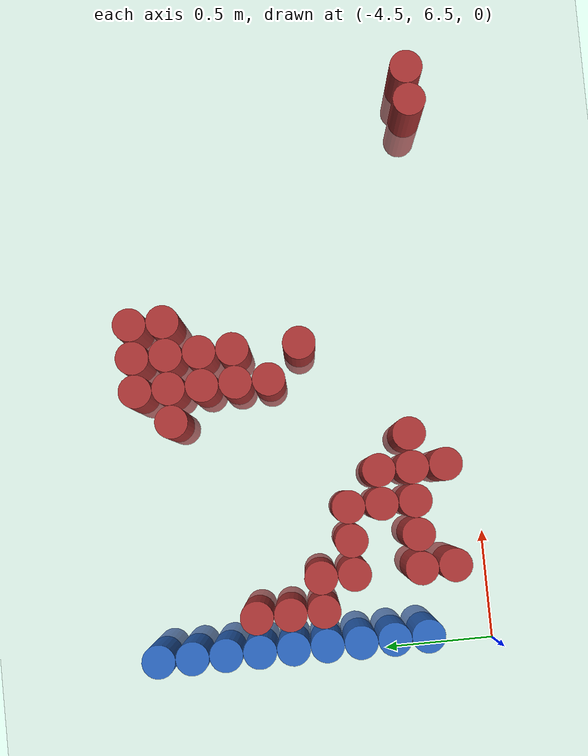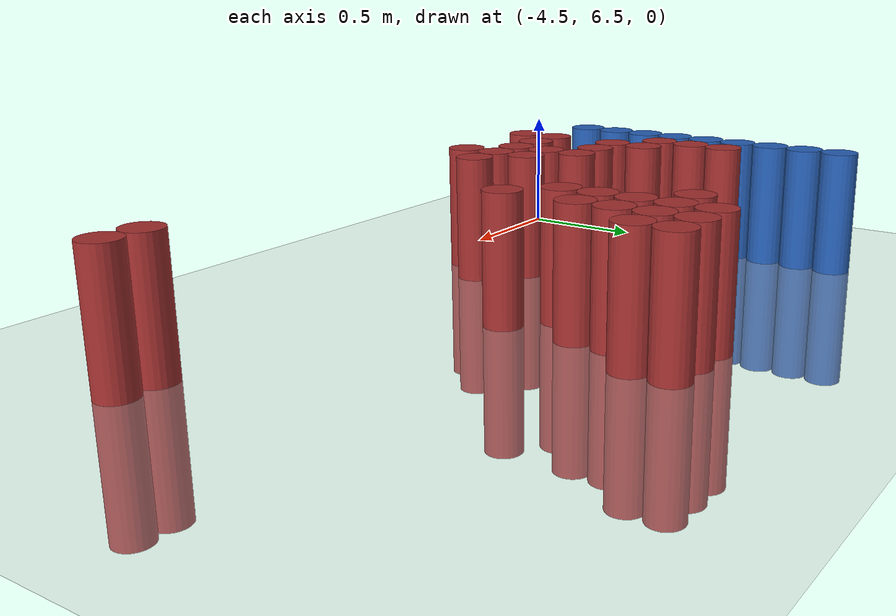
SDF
<sdf version="1.6">
 <world name="default">
  <model name="ground_plane">
   <static>1</static>
   <link name="link">
    <collision name="collision">
     <geometry><plane><normal>0 0 1</normal><size>100 100</size></plane></geometry>
     <surface><friction><ode><mu>100</mu><mu2>50</mu2></ode></friction></surface>
    </collision>
    <visual name="visual">
     <cast_shadows>0</cast_shadows>
     <geometry><plane><normal>0 0 1</normal><size>100 100</size></plane></geometry>
     <material>
      <script><uri>file://media/materials/scripts/gazebo.material</uri><name>Gazebo/Grey</name></script>
     </material>
    </visual>
   </link>
  </model>
  <model name="unit_cylinder_107">
   <static>1</static>
   <pose>-4.425000 6.825000 0.000000 0.000000 0.000000 0.000000</pose>
   <link name="link">
    <inertial>
     <mass>1</mass>
     <inertia><ixx>0.145833</ixx><ixy>0</ixy><ixz>0</ixz><iyy>0.145833</iyy><iyz>0</iyz><izz>0.125</izz></inertia>
    </inertial>
    <collision name="collision">
     <geometry><cylinder><radius>0.075000</radius><length>1</length></cylinder></geometry>
    </collision>
    <visual name="visual">
     <geometry><cylinder><radius>0.075000</radius><length>1</length></cylinder></geometry>
     <material>
      <ambient>0.152000 0.379000 0.720000 1</ambient>
      <diffuse>0.152000 0.379000 0.720000 1</diffuse>
     </material>
     <material>
      <script><name>Gazebo/Grey</name><uri>file://media/materials/scripts/gazebo.material</uri></script>
     </material>
    </visual>
    <sensor name="sensor_contact" type="contact"><contact><collision>collision</collision></contact></sensor>
   </link>
   <plugin filename="gz-sim-touchplugin-system" name="gz::sim::systems::TouchPlugin">
    <target>robot</target>
    <namespace>robot</namespace>
    <time>0.001</time>
    <enabled>true</enabled>
   </plugin>
  </model>
  <model name="unit_cylinder_108">
   <static>1</static>
   <pose>-4.425000 6.975000 0.000000 0.000000 0.000000 0.000000</pose>
   <link name="link">
    <inertial>
     <mass>1</mass>
     <inertia><ixx>0.145833</ixx><ixy>0</ixy><ixz>0</ixz><iyy>0.145833</iyy><iyz>0</iyz><izz>0.125</izz></inertia>
    </inertial>
    <collision name="collision">
     <geometry><cylinder><radius>0.075000</radius><length>1</length></cylinder></geometry>
    </collision>
    <visual name="visual">
     <geometry><cylinder><radius>0.075000</radius><length>1</length></cylinder></geometry>
     <material>
      <ambient>0.152000 0.379000 0.720000 1</ambient>
      <diffuse>0.152000 0.379000 0.720000 1</diffuse>
     </material>
     <material>
      <script><name>Gazebo/Grey</name><uri>file://media/materials/scripts/gazebo.material</uri></script>
     </material>
    </visual>
    <sensor name="sensor_contact" type="contact"><contact><collision>collision</collision></contact></sensor>
   </link>
   <plugin filename="gz-sim-touchplugin-system" name="gz::sim::systems::TouchPlugin">
    <target>robot</target>
    <namespace>robot</namespace>
    <time>0.001</time>
    <enabled>true</enabled>
   </plugin>
  </model>
  <model name="unit_cylinder_109">
   <static>1</static>
   <pose>-4.425000 7.125000 0.000000 0.000000 0.000000 0.000000</pose>
   <link name="link">
    <inertial>
     <mass>1</mass>
     <inertia><ixx>0.145833</ixx><ixy>0</ixy><ixz>0</ixz><iyy>0.145833</iyy><iyz>0</iyz><izz>0.125</izz></inertia>
    </inertial>
    <collision name="collision">
     <geometry><cylinder><radius>0.075000</radius><length>1</length></cylinder></geometry>
    </collision>
    <visual name="visual">
     <geometry><cylinder><radius>0.075000</radius><length>1</length></cylinder></geometry>
     <material>
      <ambient>0.152000 0.379000 0.720000 1</ambient>
      <diffuse>0.152000 0.379000 0.720000 1</diffuse>
     </material>
     <material>
      <script><name>Gazebo/Grey</name><uri>file://media/materials/scripts/gazebo.material</uri></script>
     </material>
    </visual>
    <sensor name="sensor_contact" type="contact"><contact><collision>collision</collision></contact></sensor>
   </link>
   <plugin filename="gz-sim-touchplugin-system" name="gz::sim::systems::TouchPlugin">
    <target>robot</target>
    <namespace>robot</namespace>
    <time>0.001</time>
    <enabled>true</enabled>
   </plugin>
  </model>
  <model name="unit_cylinder_110">
   <static>1</static>
   <pose>-4.425000 7.275000 0.000000 0.000000 0.000000 0.000000</pose>
   <link name="link">
    <inertial>
     <mass>1</mass>
     <inertia><ixx>0.145833</ixx><ixy>0</ixy><ixz>0</ixz><iyy>0.145833</iyy><iyz>0</iyz><izz>0.125</izz></inertia>
    </inertial>
    <collision name="collision">
     <geometry><cylinder><radius>0.075000</radius><length>1</length></cylinder></geometry>
    </collision>
    <visual name="visual">
     <geometry><cylinder><radius>0.075000</radius><length>1</length></cylinder></geometry>
     <material>
      <ambient>0.152000 0.379000 0.720000 1</ambient>
      <diffuse>0.152000 0.379000 0.720000 1</diffuse>
     </material>
     <material>
      <script><name>Gazebo/Grey</name><uri>file://media/materials/scripts/gazebo.material</uri></script>
     </material>
    </visual>
    <sensor name="sensor_contact" type="contact"><contact><collision>collision</collision></contact></sensor>
   </link>
   <plugin filename="gz-sim-touchplugin-system" name="gz::sim::systems::TouchPlugin">
    <target>robot</target>
    <namespace>robot</namespace>
    <time>0.001</time>
    <enabled>true</enabled>
   </plugin>
  </model>
  <model name="unit_cylinder_111">
   <static>1</static>
   <pose>-4.425000 7.425000 0.000000 0.000000 0.000000 0.000000</pose>
   <link name="link">
    <inertial>
     <mass>1</mass>
     <inertia><ixx>0.145833</ixx><ixy>0</ixy><ixz>0</ixz><iyy>0.145833</iyy><iyz>0</iyz><izz>0.125</izz></inertia>
    </inertial>
    <collision name="collision">
     <geometry><cylinder><radius>0.075000</radius><length>1</length></cylinder></geometry>
    </collision>
    <visual name="visual">
     <geometry><cylinder><radius>0.075000</radius><length>1</length></cylinder></geometry>
     <material>
      <ambient>0.152000 0.379000 0.720000 1</ambient>
      <diffuse>0.152000 0.379000 0.720000 1</diffuse>
     </material>
     <material>
      <script><name>Gazebo/Grey</name><uri>file://media/materials/scripts/gazebo.material</uri></script>
     </material>
    </visual>
    <sensor name="sensor_contact" type="contact"><contact><collision>collision</collision></contact></sensor>
   </link>
   <plugin filename="gz-sim-touchplugin-system" name="gz::sim::systems::TouchPlugin">
    <target>robot</target>
    <namespace>robot</namespace>
    <time>0.001</time>
    <enabled>true</enabled>
   </plugin>
  </model>
  <model name="unit_cylinder_112">
   <static>1</static>
   <pose>-4.425000 7.575000 0.000000 0.000000 0.000000 0.000000</pose>
   <link name="link">
    <inertial>
     <mass>1</mass>
     <inertia><ixx>0.145833</ixx><ixy>0</ixy><ixz>0</ixz><iyy>0.145833</iyy><iyz>0</iyz><izz>0.125</izz></inertia>
    </inertial>
    <collision name="collision">
     <geometry><cylinder><radius>0.075000</radius><length>1</length></cylinder></geometry>
    </collision>
    <visual name="visual">
     <geometry><cylinder><radius>0.075000</radius><length>1</length></cylinder></geometry>
     <material>
      <ambient>0.152000 0.379000 0.720000 1</ambient>
      <diffuse>0.152000 0.379000 0.720000 1</diffuse>
     </material>
     <material>
      <script><name>Gazebo/Grey</name><uri>file://media/materials/scripts/gazebo.material</uri></script>
     </material>
    </visual>
    <sensor name="sensor_contact" type="contact"><contact><collision>collision</collision></contact></sensor>
   </link>
   <plugin filename="gz-sim-touchplugin-system" name="gz::sim::systems::TouchPlugin">
    <target>robot</target>
    <namespace>robot</namespace>
    <time>0.001</time>
    <enabled>true</enabled>
   </plugin>
  </model>
  <model name="unit_cylinder_113">
   <static>1</static>
   <pose>-4.425000 7.725000 0.000000 0.000000 0.000000 0.000000</pose>
   <link name="link">
    <inertial>
     <mass>1</mass>
     <inertia><ixx>0.145833</ixx><ixy>0</ixy><ixz>0</ixz><iyy>0.145833</iyy><iyz>0</iyz><izz>0.125</izz></inertia>
    </inertial>
    <collision name="collision">
     <geometry><cylinder><radius>0.075000</radius><length>1</length></cylinder></geometry>
    </collision>
    <visual name="visual">
     <geometry><cylinder><radius>0.075000</radius><length>1</length></cylinder></geometry>
     <material>
      <ambient>0.152000 0.379000 0.720000 1</ambient>
      <diffuse>0.152000 0.379000 0.720000 1</diffuse>
     </material>
     <material>
      <script><name>Gazebo/Grey</name><uri>file://media/materials/scripts/gazebo.material</uri></script>
     </material>
    </visual>
    <sensor name="sensor_contact" type="contact"><contact><collision>collision</collision></contact></sensor>
   </link>
   <plugin filename="gz-sim-touchplugin-system" name="gz::sim::systems::TouchPlugin">
    <target>robot</target>
    <namespace>robot</namespace>
    <time>0.001</time>
    <enabled>true</enabled>
   </plugin>
  </model>
  <model name="unit_cylinder_114">
   <static>1</static>
   <pose>-4.425000 7.875000 0.000000 0.000000 0.000000 0.000000</pose>
   <link name="link">
    <inertial>
     <mass>1</mass>
     <inertia><ixx>0.145833</ixx><ixy>0</ixy><ixz>0</ixz><iyy>0.145833</iyy><iyz>0</iyz><izz>0.125</izz></inertia>
    </inertial>
    <collision name="collision">
     <geometry><cylinder><radius>0.075000</radius><length>1</length></cylinder></geometry>
    </collision>
    <visual name="visual">
     <geometry><cylinder><radius>0.075000</radius><length>1</length></cylinder></geometry>
     <material>
      <ambient>0.152000 0.379000 0.720000 1</ambient>
      <diffuse>0.152000 0.379000 0.720000 1</diffuse>
     </material>
     <material>
      <script><name>Gazebo/Grey</name><uri>file://media/materials/scripts/gazebo.material</uri></script>
     </material>
    </visual>
    <sensor name="sensor_contact" type="contact"><contact><collision>collision</collision></contact></sensor>
   </link>
   <plugin filename="gz-sim-touchplugin-system" name="gz::sim::systems::TouchPlugin">
    <target>robot</target>
    <namespace>robot</namespace>
    <time>0.001</time>
    <enabled>true</enabled>
   </plugin>
  </model>
  <model name="unit_cylinder_115">
   <static>1</static>
   <pose>-4.425000 8.025000 0.000000 0.000000 0.000000 0.000000</pose>
   <link name="link">
    <inertial>
     <mass>1</mass>
     <inertia><ixx>0.145833</ixx><ixy>0</ixy><ixz>0</ixz><iyy>0.145833</iyy><iyz>0</iyz><izz>0.125</izz></inertia>
    </inertial>
    <collision name="collision">
     <geometry><cylinder><radius>0.075000</radius><length>1</length></cylinder></geometry>
    </collision>
    <visual name="visual">
     <geometry><cylinder><radius>0.075000</radius><length>1</length></cylinder></geometry>
     <material>
      <ambient>0.152000 0.379000 0.720000 1</ambient>
      <diffuse>0.152000 0.379000 0.720000 1</diffuse>
     </material>
     <material>
      <script><name>Gazebo/Grey</name><uri>file://media/materials/scripts/gazebo.material</uri></script>
     </material>
    </visual>
    <sensor name="sensor_contact" type="contact"><contact><collision>collision</collision></contact></sensor>
   </link>
   <plugin filename="gz-sim-touchplugin-system" name="gz::sim::systems::TouchPlugin">
    <target>robot</target>
    <namespace>robot</namespace>
    <time>0.001</time>
    <enabled>true</enabled>
   </plugin>
  </model>
  <model name="unit_cylinder_132">
   <static>1</static>
   <pose>-4.275000 7.275000 0.000000 0.000000 0.000000 0.000000</pose>
   <link name="link">
    <inertial>
     <mass>1</mass>
     <inertia><ixx>0.145833</ixx><ixy>0</ixy><ixz>0</ixz><iyy>0.145833</iyy><iyz>0</iyz><izz>0.125</izz></inertia>
    </inertial>
    <collision name="collision">
     <geometry><cylinder><radius>0.075000</radius><length>1</length></cylinder></geometry>
    </collision>
    <visual name="visual">
     <geometry><cylinder><radius>0.075000</radius><length>1</length></cylinder></geometry>
     <material>
      <ambient>0.648000 0.192000 0.192000 1</ambient>
      <diffuse>0.648000 0.192000 0.192000 1</diffuse>
     </material>
     <material>
      <script><name>Gazebo/Grey</name><uri>file://media/materials/scripts/gazebo.material</uri></script>
     </material>
    </visual>
    <sensor name="sensor_contact" type="contact"><contact><collision>collision</collision></contact></sensor>
   </link>
   <plugin filename="gz-sim-touchplugin-system" name="gz::sim::systems::TouchPlugin">
    <target>robot</target>
    <namespace>robot</namespace>
    <time>0.001</time>
    <enabled>true</enabled>
   </plugin>
  </model>
  <model name="unit_cylinder_133">
   <static>1</static>
   <pose>-4.275000 7.425000 0.000000 0.000000 0.000000 0.000000</pose>
   <link name="link">
    <inertial>
     <mass>1</mass>
     <inertia><ixx>0.145833</ixx><ixy>0</ixy><ixz>0</ixz><iyy>0.145833</iyy><iyz>0</iyz><izz>0.125</izz></inertia>
    </inertial>
    <collision name="collision">
     <geometry><cylinder><radius>0.075000</radius><length>1</length></cylinder></geometry>
    </collision>
    <visual name="visual">
     <geometry><cylinder><radius>0.075000</radius><length>1</length></cylinder></geometry>
     <material>
      <ambient>0.648000 0.192000 0.192000 1</ambient>
      <diffuse>0.648000 0.192000 0.192000 1</diffuse>
     </material>
     <material>
      <script><name>Gazebo/Grey</name><uri>file://media/materials/scripts/gazebo.material</uri></script>
     </material>
    </visual>
    <sensor name="sensor_contact" type="contact"><contact><collision>collision</collision></contact></sensor>
   </link>
   <plugin filename="gz-sim-touchplugin-system" name="gz::sim::systems::TouchPlugin">
    <target>robot</target>
    <namespace>robot</namespace>
    <time>0.001</time>
    <enabled>true</enabled>
   </plugin>
  </model>
  <model name="unit_cylinder_134">
   <static>1</static>
   <pose>-4.275000 7.575000 0.000000 0.000000 0.000000 0.000000</pose>
   <link name="link">
    <inertial>
     <mass>1</mass>
     <inertia><ixx>0.145833</ixx><ixy>0</ixy><ixz>0</ixz><iyy>0.145833</iyy><iyz>0</iyz><izz>0.125</izz></inertia>
    </inertial>
    <collision name="collision">
     <geometry><cylinder><radius>0.075000</radius><length>1</length></cylinder></geometry>
    </collision>
    <visual name="visual">
     <geometry><cylinder><radius>0.075000</radius><length>1</length></cylinder></geometry>
     <material>
      <ambient>0.648000 0.192000 0.192000 1</ambient>
      <diffuse>0.648000 0.192000 0.192000 1</diffuse>
     </material>
     <material>
      <script><name>Gazebo/Grey</name><uri>file://media/materials/scripts/gazebo.material</uri></script>
     </material>
    </visual>
    <sensor name="sensor_contact" type="contact"><contact><collision>collision</collision></contact></sensor>
   </link>
   <plugin filename="gz-sim-touchplugin-system" name="gz::sim::systems::TouchPlugin">
    <target>robot</target>
    <namespace>robot</namespace>
    <time>0.001</time>
    <enabled>true</enabled>
   </plugin>
  </model>
  <model name="unit_cylinder_142">
   <static>1</static>
   <pose>-4.125000 6.675000 0.000000 0.000000 0.000000 0.000000</pose>
   <link name="link">
    <inertial>
     <mass>1</mass>
     <inertia><ixx>0.145833</ixx><ixy>0</ixy><ixz>0</ixz><iyy>0.145833</iyy><iyz>0</iyz><izz>0.125</izz></inertia>
    </inertial>
    <collision name="collision">
     <geometry><cylinder><radius>0.075000</radius><length>1</length></cylinder></geometry>
    </collision>
    <visual name="visual">
     <geometry><cylinder><radius>0.075000</radius><length>1</length></cylinder></geometry>
     <material>
      <ambient>0.648000 0.192000 0.192000 1</ambient>
      <diffuse>0.648000 0.192000 0.192000 1</diffuse>
     </material>
     <material>
      <script><name>Gazebo/Grey</name><uri>file://media/materials/scripts/gazebo.material</uri></script>
     </material>
    </visual>
    <sensor name="sensor_contact" type="contact"><contact><collision>collision</collision></contact></sensor>
   </link>
   <plugin filename="gz-sim-touchplugin-system" name="gz::sim::systems::TouchPlugin">
    <target>robot</target>
    <namespace>robot</namespace>
    <time>0.001</time>
    <enabled>true</enabled>
   </plugin>
  </model>
  <model name="unit_cylinder_143">
   <static>1</static>
   <pose>-4.125000 6.825000 0.000000 0.000000 0.000000 0.000000</pose>
   <link name="link">
    <inertial>
     <mass>1</mass>
     <inertia><ixx>0.145833</ixx><ixy>0</ixy><ixz>0</ixz><iyy>0.145833</iyy><iyz>0</iyz><izz>0.125</izz></inertia>
    </inertial>
    <collision name="collision">
     <geometry><cylinder><radius>0.075000</radius><length>1</length></cylinder></geometry>
    </collision>
    <visual name="visual">
     <geometry><cylinder><radius>0.075000</radius><length>1</length></cylinder></geometry>
     <material>
      <ambient>0.648000 0.192000 0.192000 1</ambient>
      <diffuse>0.648000 0.192000 0.192000 1</diffuse>
     </material>
     <material>
      <script><name>Gazebo/Grey</name><uri>file://media/materials/scripts/gazebo.material</uri></script>
     </material>
    </visual>
    <sensor name="sensor_contact" type="contact"><contact><collision>collision</collision></contact></sensor>
   </link>
   <plugin filename="gz-sim-touchplugin-system" name="gz::sim::systems::TouchPlugin">
    <target>robot</target>
    <namespace>robot</namespace>
    <time>0.001</time>
    <enabled>true</enabled>
   </plugin>
  </model>
  <model name="unit_cylinder_144">
   <static>1</static>
   <pose>-4.125000 7.125000 0.000000 0.000000 0.000000 0.000000</pose>
   <link name="link">
    <inertial>
     <mass>1</mass>
     <inertia><ixx>0.145833</ixx><ixy>0</ixy><ixz>0</ixz><iyy>0.145833</iyy><iyz>0</iyz><izz>0.125</izz></inertia>
    </inertial>
    <collision name="collision">
     <geometry><cylinder><radius>0.075000</radius><length>1</length></cylinder></geometry>
    </collision>
    <visual name="visual">
     <geometry><cylinder><radius>0.075000</radius><length>1</length></cylinder></geometry>
     <material>
      <ambient>0.648000 0.192000 0.192000 1</ambient>
      <diffuse>0.648000 0.192000 0.192000 1</diffuse>
     </material>
     <material>
      <script><name>Gazebo/Grey</name><uri>file://media/materials/scripts/gazebo.material</uri></script>
     </material>
    </visual>
    <sensor name="sensor_contact" type="contact"><contact><collision>collision</collision></contact></sensor>
   </link>
   <plugin filename="gz-sim-touchplugin-system" name="gz::sim::systems::TouchPlugin">
    <target>robot</target>
    <namespace>robot</namespace>
    <time>0.001</time>
    <enabled>true</enabled>
   </plugin>
  </model>
  <model name="unit_cylinder_145">
   <static>1</static>
   <pose>-4.125000 7.275000 0.000000 0.000000 0.000000 0.000000</pose>
   <link name="link">
    <inertial>
     <mass>1</mass>
     <inertia><ixx>0.145833</ixx><ixy>0</ixy><ixz>0</ixz><iyy>0.145833</iyy><iyz>0</iyz><izz>0.125</izz></inertia>
    </inertial>
    <collision name="collision">
     <geometry><cylinder><radius>0.075000</radius><length>1</length></cylinder></geometry>
    </collision>
    <visual name="visual">
     <geometry><cylinder><radius>0.075000</radius><length>1</length></cylinder></geometry>
     <material>
      <ambient>0.648000 0.192000 0.192000 1</ambient>
      <diffuse>0.648000 0.192000 0.192000 1</diffuse>
     </material>
     <material>
      <script><name>Gazebo/Grey</name><uri>file://media/materials/scripts/gazebo.material</uri></script>
     </material>
    </visual>
    <sensor name="sensor_contact" type="contact"><contact><collision>collision</collision></contact></sensor>
   </link>
   <plugin filename="gz-sim-touchplugin-system" name="gz::sim::systems::TouchPlugin">
    <target>robot</target>
    <namespace>robot</namespace>
    <time>0.001</time>
    <enabled>true</enabled>
   </plugin>
  </model>
  <model name="unit_cylinder_153">
   <static>1</static>
   <pose>-3.975000 6.825000 0.000000 0.000000 0.000000 0.000000</pose>
   <link name="link">
    <inertial>
     <mass>1</mass>
     <inertia><ixx>0.145833</ixx><ixy>0</ixy><ixz>0</ixz><iyy>0.145833</iyy><iyz>0</iyz><izz>0.125</izz></inertia>
    </inertial>
    <collision name="collision">
     <geometry><cylinder><radius>0.075000</radius><length>1</length></cylinder></geometry>
    </collision>
    <visual name="visual">
     <geometry><cylinder><radius>0.075000</radius><length>1</length></cylinder></geometry>
     <material>
      <ambient>0.648000 0.192000 0.192000 1</ambient>
      <diffuse>0.648000 0.192000 0.192000 1</diffuse>
     </material>
     <material>
      <script><name>Gazebo/Grey</name><uri>file://media/materials/scripts/gazebo.material</uri></script>
     </material>
    </visual>
    <sensor name="sensor_contact" type="contact"><contact><collision>collision</collision></contact></sensor>
   </link>
   <plugin filename="gz-sim-touchplugin-system" name="gz::sim::systems::TouchPlugin">
    <target>robot</target>
    <namespace>robot</namespace>
    <time>0.001</time>
    <enabled>true</enabled>
   </plugin>
  </model>
  <model name="unit_cylinder_154">
   <static>1</static>
   <pose>-3.975000 7.125000 0.000000 0.000000 0.000000 0.000000</pose>
   <link name="link">
    <inertial>
     <mass>1</mass>
     <inertia><ixx>0.145833</ixx><ixy>0</ixy><ixz>0</ixz><iyy>0.145833</iyy><iyz>0</iyz><izz>0.125</izz></inertia>
    </inertial>
    <collision name="collision">
     <geometry><cylinder><radius>0.075000</radius><length>1</length></cylinder></geometry>
    </collision>
    <visual name="visual">
     <geometry><cylinder><radius>0.075000</radius><length>1</length></cylinder></geometry>
     <material>
      <ambient>0.648000 0.192000 0.192000 1</ambient>
      <diffuse>0.648000 0.192000 0.192000 1</diffuse>
     </material>
     <material>
      <script><name>Gazebo/Grey</name><uri>file://media/materials/scripts/gazebo.material</uri></script>
     </material>
    </visual>
    <sensor name="sensor_contact" type="contact"><contact><collision>collision</collision></contact></sensor>
   </link>
   <plugin filename="gz-sim-touchplugin-system" name="gz::sim::systems::TouchPlugin">
    <target>robot</target>
    <namespace>robot</namespace>
    <time>0.001</time>
    <enabled>true</enabled>
   </plugin>
  </model>
  <model name="unit_cylinder_158">
   <static>1</static>
   <pose>-3.825000 6.825000 0.000000 0.000000 0.000000 0.000000</pose>
   <link name="link">
    <inertial>
     <mass>1</mass>
     <inertia><ixx>0.145833</ixx><ixy>0</ixy><ixz>0</ixz><iyy>0.145833</iyy><iyz>0</iyz><izz>0.125</izz></inertia>
    </inertial>
    <collision name="collision">
     <geometry><cylinder><radius>0.075000</radius><length>1</length></cylinder></geometry>
    </collision>
    <visual name="visual">
     <geometry><cylinder><radius>0.075000</radius><length>1</length></cylinder></geometry>
     <material>
      <ambient>0.648000 0.192000 0.192000 1</ambient>
      <diffuse>0.648000 0.192000 0.192000 1</diffuse>
     </material>
     <material>
      <script><name>Gazebo/Grey</name><uri>file://media/materials/scripts/gazebo.material</uri></script>
     </material>
    </visual>
    <sensor name="sensor_contact" type="contact"><contact><collision>collision</collision></contact></sensor>
   </link>
   <plugin filename="gz-sim-touchplugin-system" name="gz::sim::systems::TouchPlugin">
    <target>robot</target>
    <namespace>robot</namespace>
    <time>0.001</time>
    <enabled>true</enabled>
   </plugin>
  </model>
  <model name="unit_cylinder_159">
   <static>1</static>
   <pose>-3.825000 6.975000 0.000000 0.000000 0.000000 0.000000</pose>
   <link name="link">
    <inertial>
     <mass>1</mass>
     <inertia><ixx>0.145833</ixx><ixy>0</ixy><ixz>0</ixz><iyy>0.145833</iyy><iyz>0</iyz><izz>0.125</izz></inertia>
    </inertial>
    <collision name="collision">
     <geometry><cylinder><radius>0.075000</radius><length>1</length></cylinder></geometry>
    </collision>
    <visual name="visual">
     <geometry><cylinder><radius>0.075000</radius><length>1</length></cylinder></geometry>
     <material>
      <ambient>0.648000 0.192000 0.192000 1</ambient>
      <diffuse>0.648000 0.192000 0.192000 1</diffuse>
     </material>
     <material>
      <script><name>Gazebo/Grey</name><uri>file://media/materials/scripts/gazebo.material</uri></script>
     </material>
    </visual>
    <sensor name="sensor_contact" type="contact"><contact><collision>collision</collision></contact></sensor>
   </link>
   <plugin filename="gz-sim-touchplugin-system" name="gz::sim::systems::TouchPlugin">
    <target>robot</target>
    <namespace>robot</namespace>
    <time>0.001</time>
    <enabled>true</enabled>
   </plugin>
  </model>
  <model name="unit_cylinder_160">
   <static>1</static>
   <pose>-3.825000 7.125000 0.000000 0.000000 0.000000 0.000000</pose>
   <link name="link">
    <inertial>
     <mass>1</mass>
     <inertia><ixx>0.145833</ixx><ixy>0</ixy><ixz>0</ixz><iyy>0.145833</iyy><iyz>0</iyz><izz>0.125</izz></inertia>
    </inertial>
    <collision name="collision">
     <geometry><cylinder><radius>0.075000</radius><length>1</length></cylinder></geometry>
    </collision>
    <visual name="visual">
     <geometry><cylinder><radius>0.075000</radius><length>1</length></cylinder></geometry>
     <material>
      <ambient>0.648000 0.192000 0.192000 1</ambient>
      <diffuse>0.648000 0.192000 0.192000 1</diffuse>
     </material>
     <material>
      <script><name>Gazebo/Grey</name><uri>file://media/materials/scripts/gazebo.material</uri></script>
     </material>
    </visual>
    <sensor name="sensor_contact" type="contact"><contact><collision>collision</collision></contact></sensor>
   </link>
   <plugin filename="gz-sim-touchplugin-system" name="gz::sim::systems::TouchPlugin">
    <target>robot</target>
    <namespace>robot</namespace>
    <time>0.001</time>
    <enabled>true</enabled>
   </plugin>
  </model>
  <model name="unit_cylinder_162">
   <static>1</static>
   <pose>-3.675000 6.675000 0.000000 0.000000 0.000000 0.000000</pose>
   <link name="link">
    <inertial>
     <mass>1</mass>
     <inertia><ixx>0.145833</ixx><ixy>0</ixy><ixz>0</ixz><iyy>0.145833</iyy><iyz>0</iyz><izz>0.125</izz></inertia>
    </inertial>
    <collision name="collision">
     <geometry><cylinder><radius>0.075000</radius><length>1</length></cylinder></geometry>
    </collision>
    <visual name="visual">
     <geometry><cylinder><radius>0.075000</radius><length>1</length></cylinder></geometry>
     <material>
      <ambient>0.648000 0.192000 0.192000 1</ambient>
      <diffuse>0.648000 0.192000 0.192000 1</diffuse>
     </material>
     <material>
      <script><name>Gazebo/Grey</name><uri>file://media/materials/scripts/gazebo.material</uri></script>
     </material>
    </visual>
    <sensor name="sensor_contact" type="contact"><contact><collision>collision</collision></contact></sensor>
   </link>
   <plugin filename="gz-sim-touchplugin-system" name="gz::sim::systems::TouchPlugin">
    <target>robot</target>
    <namespace>robot</namespace>
    <time>0.001</time>
    <enabled>true</enabled>
   </plugin>
  </model>
  <model name="unit_cylinder_163">
   <static>1</static>
   <pose>-3.675000 6.825000 0.000000 0.000000 0.000000 0.000000</pose>
   <link name="link">
    <inertial>
     <mass>1</mass>
     <inertia><ixx>0.145833</ixx><ixy>0</ixy><ixz>0</ixz><iyy>0.145833</iyy><iyz>0</iyz><izz>0.125</izz></inertia>
    </inertial>
    <collision name="collision">
     <geometry><cylinder><radius>0.075000</radius><length>1</length></cylinder></geometry>
    </collision>
    <visual name="visual">
     <geometry><cylinder><radius>0.075000</radius><length>1</length></cylinder></geometry>
     <material>
      <ambient>0.648000 0.192000 0.192000 1</ambient>
      <diffuse>0.648000 0.192000 0.192000 1</diffuse>
     </material>
     <material>
      <script><name>Gazebo/Grey</name><uri>file://media/materials/scripts/gazebo.material</uri></script>
     </material>
    </visual>
    <sensor name="sensor_contact" type="contact"><contact><collision>collision</collision></contact></sensor>
   </link>
   <plugin filename="gz-sim-touchplugin-system" name="gz::sim::systems::TouchPlugin">
    <target>robot</target>
    <namespace>robot</namespace>
    <time>0.001</time>
    <enabled>true</enabled>
   </plugin>
  </model>
  <model name="unit_cylinder_164">
   <static>1</static>
   <pose>-3.675000 6.975000 0.000000 0.000000 0.000000 0.000000</pose>
   <link name="link">
    <inertial>
     <mass>1</mass>
     <inertia><ixx>0.145833</ixx><ixy>0</ixy><ixz>0</ixz><iyy>0.145833</iyy><iyz>0</iyz><izz>0.125</izz></inertia>
    </inertial>
    <collision name="collision">
     <geometry><cylinder><radius>0.075000</radius><length>1</length></cylinder></geometry>
    </collision>
    <visual name="visual">
     <geometry><cylinder><radius>0.075000</radius><length>1</length></cylinder></geometry>
     <material>
      <ambient>0.648000 0.192000 0.192000 1</ambient>
      <diffuse>0.648000 0.192000 0.192000 1</diffuse>
     </material>
     <material>
      <script><name>Gazebo/Grey</name><uri>file://media/materials/scripts/gazebo.material</uri></script>
     </material>
    </visual>
    <sensor name="sensor_contact" type="contact"><contact><collision>collision</collision></contact></sensor>
   </link>
   <plugin filename="gz-sim-touchplugin-system" name="gz::sim::systems::TouchPlugin">
    <target>robot</target>
    <namespace>robot</namespace>
    <time>0.001</time>
    <enabled>true</enabled>
   </plugin>
  </model>
  <model name="unit_cylinder_168">
   <static>1</static>
   <pose>-3.525000 6.825000 0.000000 0.000000 0.000000 0.000000</pose>
   <link name="link">
    <inertial>
     <mass>1</mass>
     <inertia><ixx>0.145833</ixx><ixy>0</ixy><ixz>0</ixz><iyy>0.145833</iyy><iyz>0</iyz><izz>0.125</izz></inertia>
    </inertial>
    <collision name="collision">
     <geometry><cylinder><radius>0.075000</radius><length>1</length></cylinder></geometry>
    </collision>
    <visual name="visual">
     <geometry><cylinder><radius>0.075000</radius><length>1</length></cylinder></geometry>
     <material>
      <ambient>0.648000 0.192000 0.192000 1</ambient>
      <diffuse>0.648000 0.192000 0.192000 1</diffuse>
     </material>
     <material>
      <script><name>Gazebo/Grey</name><uri>file://media/materials/scripts/gazebo.material</uri></script>
     </material>
    </visual>
    <sensor name="sensor_contact" type="contact"><contact><collision>collision</collision></contact></sensor>
   </link>
   <plugin filename="gz-sim-touchplugin-system" name="gz::sim::systems::TouchPlugin">
    <target>robot</target>
    <namespace>robot</namespace>
    <time>0.001</time>
    <enabled>true</enabled>
   </plugin>
  </model>
  <model name="unit_cylinder_173">
   <static>1</static>
   <pose>-3.375000 7.875000 0.000000 0.000000 0.000000 0.000000</pose>
   <link name="link">
    <inertial>
     <mass>1</mass>
     <inertia><ixx>0.145833</ixx><ixy>0</ixy><ixz>0</ixz><iyy>0.145833</iyy><iyz>0</iyz><izz>0.125</izz></inertia>
    </inertial>
    <collision name="collision">
     <geometry><cylinder><radius>0.075000</radius><length>1</length></cylinder></geometry>
    </collision>
    <visual name="visual">
     <geometry><cylinder><radius>0.075000</radius><length>1</length></cylinder></geometry>
     <material>
      <ambient>0.648000 0.192000 0.192000 1</ambient>
      <diffuse>0.648000 0.192000 0.192000 1</diffuse>
     </material>
     <material>
      <script><name>Gazebo/Grey</name><uri>file://media/materials/scripts/gazebo.material</uri></script>
     </material>
    </visual>
    <sensor name="sensor_contact" type="contact"><contact><collision>collision</collision></contact></sensor>
   </link>
   <plugin filename="gz-sim-touchplugin-system" name="gz::sim::systems::TouchPlugin">
    <target>robot</target>
    <namespace>robot</namespace>
    <time>0.001</time>
    <enabled>true</enabled>
   </plugin>
  </model>
  <model name="unit_cylinder_177">
   <static>1</static>
   <pose>-3.225000 7.425000 0.000000 0.000000 0.000000 0.000000</pose>
   <link name="link">
    <inertial>
     <mass>1</mass>
     <inertia><ixx>0.145833</ixx><ixy>0</ixy><ixz>0</ixz><iyy>0.145833</iyy><iyz>0</iyz><izz>0.125</izz></inertia>
    </inertial>
    <collision name="collision">
     <geometry><cylinder><radius>0.075000</radius><length>1</length></cylinder></geometry>
    </collision>
    <visual name="visual">
     <geometry><cylinder><radius>0.075000</radius><length>1</length></cylinder></geometry>
     <material>
      <ambient>0.648000 0.192000 0.192000 1</ambient>
      <diffuse>0.648000 0.192000 0.192000 1</diffuse>
     </material>
     <material>
      <script><name>Gazebo/Grey</name><uri>file://media/materials/scripts/gazebo.material</uri></script>
     </material>
    </visual>
    <sensor name="sensor_contact" type="contact"><contact><collision>collision</collision></contact></sensor>
   </link>
   <plugin filename="gz-sim-touchplugin-system" name="gz::sim::systems::TouchPlugin">
    <target>robot</target>
    <namespace>robot</namespace>
    <time>0.001</time>
    <enabled>true</enabled>
   </plugin>
  </model>
  <model name="unit_cylinder_178">
   <static>1</static>
   <pose>-3.225000 7.575000 0.000000 0.000000 0.000000 0.000000</pose>
   <link name="link">
    <inertial>
     <mass>1</mass>
     <inertia><ixx>0.145833</ixx><ixy>0</ixy><ixz>0</ixz><iyy>0.145833</iyy><iyz>0</iyz><izz>0.125</izz></inertia>
    </inertial>
    <collision name="collision">
     <geometry><cylinder><radius>0.075000</radius><length>1</length></cylinder></geometry>
    </collision>
    <visual name="visual">
     <geometry><cylinder><radius>0.075000</radius><length>1</length></cylinder></geometry>
     <material>
      <ambient>0.648000 0.192000 0.192000 1</ambient>
      <diffuse>0.648000 0.192000 0.192000 1</diffuse>
     </material>
     <material>
      <script><name>Gazebo/Grey</name><uri>file://media/materials/scripts/gazebo.material</uri></script>
     </material>
    </visual>
    <sensor name="sensor_contact" type="contact"><contact><collision>collision</collision></contact></sensor>
   </link>
   <plugin filename="gz-sim-touchplugin-system" name="gz::sim::systems::TouchPlugin">
    <target>robot</target>
    <namespace>robot</namespace>
    <time>0.001</time>
    <enabled>true</enabled>
   </plugin>
  </model>
  <model name="unit_cylinder_179">
   <static>1</static>
   <pose>-3.225000 7.725000 0.000000 0.000000 0.000000 0.000000</pose>
   <link name="link">
    <inertial>
     <mass>1</mass>
     <inertia><ixx>0.145833</ixx><ixy>0</ixy><ixz>0</ixz><iyy>0.145833</iyy><iyz>0</iyz><izz>0.125</izz></inertia>
    </inertial>
    <collision name="collision">
     <geometry><cylinder><radius>0.075000</radius><length>1</length></cylinder></geometry>
    </collision>
    <visual name="visual">
     <geometry><cylinder><radius>0.075000</radius><length>1</length></cylinder></geometry>
     <material>
      <ambient>0.648000 0.192000 0.192000 1</ambient>
      <diffuse>0.648000 0.192000 0.192000 1</diffuse>
     </material>
     <material>
      <script><name>Gazebo/Grey</name><uri>file://media/materials/scripts/gazebo.material</uri></script>
     </material>
    </visual>
    <sensor name="sensor_contact" type="contact"><contact><collision>collision</collision></contact></sensor>
   </link>
   <plugin filename="gz-sim-touchplugin-system" name="gz::sim::systems::TouchPlugin">
    <target>robot</target>
    <namespace>robot</namespace>
    <time>0.001</time>
    <enabled>true</enabled>
   </plugin>
  </model>
  <model name="unit_cylinder_180">
   <static>1</static>
   <pose>-3.225000 7.875000 0.000000 0.000000 0.000000 0.000000</pose>
   <link name="link">
    <inertial>
     <mass>1</mass>
     <inertia><ixx>0.145833</ixx><ixy>0</ixy><ixz>0</ixz><iyy>0.145833</iyy><iyz>0</iyz><izz>0.125</izz></inertia>
    </inertial>
    <collision name="collision">
     <geometry><cylinder><radius>0.075000</radius><length>1</length></cylinder></geometry>
    </collision>
    <visual name="visual">
     <geometry><cylinder><radius>0.075000</radius><length>1</length></cylinder></geometry>
     <material>
      <ambient>0.648000 0.192000 0.192000 1</ambient>
      <diffuse>0.648000 0.192000 0.192000 1</diffuse>
     </material>
     <material>
      <script><name>Gazebo/Grey</name><uri>file://media/materials/scripts/gazebo.material</uri></script>
     </material>
    </visual>
    <sensor name="sensor_contact" type="contact"><contact><collision>collision</collision></contact></sensor>
   </link>
   <plugin filename="gz-sim-touchplugin-system" name="gz::sim::systems::TouchPlugin">
    <target>robot</target>
    <namespace>robot</namespace>
    <time>0.001</time>
    <enabled>true</enabled>
   </plugin>
  </model>
  <model name="unit_cylinder_181">
   <static>1</static>
   <pose>-3.225000 8.025000 0.000000 0.000000 0.000000 0.000000</pose>
   <link name="link">
    <inertial>
     <mass>1</mass>
     <inertia><ixx>0.145833</ixx><ixy>0</ixy><ixz>0</ixz><iyy>0.145833</iyy><iyz>0</iyz><izz>0.125</izz></inertia>
    </inertial>
    <collision name="collision">
     <geometry><cylinder><radius>0.075000</radius><length>1</length></cylinder></geometry>
    </collision>
    <visual name="visual">
     <geometry><cylinder><radius>0.075000</radius><length>1</length></cylinder></geometry>
     <material>
      <ambient>0.648000 0.192000 0.192000 1</ambient>
      <diffuse>0.648000 0.192000 0.192000 1</diffuse>
     </material>
     <material>
      <script><name>Gazebo/Grey</name><uri>file://media/materials/scripts/gazebo.material</uri></script>
     </material>
    </visual>
    <sensor name="sensor_contact" type="contact"><contact><collision>collision</collision></contact></sensor>
   </link>
   <plugin filename="gz-sim-touchplugin-system" name="gz::sim::systems::TouchPlugin">
    <target>robot</target>
    <namespace>robot</namespace>
    <time>0.001</time>
    <enabled>true</enabled>
   </plugin>
  </model>
  <model name="unit_cylinder_184">
   <static>1</static>
   <pose>-3.075000 7.275000 0.000000 0.000000 0.000000 0.000000</pose>
   <link name="link">
    <inertial>
     <mass>1</mass>
     <inertia><ixx>0.145833</ixx><ixy>0</ixy><ixz>0</ixz><iyy>0.145833</iyy><iyz>0</iyz><izz>0.125</izz></inertia>
    </inertial>
    <collision name="collision">
     <geometry><cylinder><radius>0.075000</radius><length>1</length></cylinder></geometry>
    </collision>
    <visual name="visual">
     <geometry><cylinder><radius>0.075000</radius><length>1</length></cylinder></geometry>
     <material>
      <ambient>0.648000 0.192000 0.192000 1</ambient>
      <diffuse>0.648000 0.192000 0.192000 1</diffuse>
     </material>
     <material>
      <script><name>Gazebo/Grey</name><uri>file://media/materials/scripts/gazebo.material</uri></script>
     </material>
    </visual>
    <sensor name="sensor_contact" type="contact"><contact><collision>collision</collision></contact></sensor>
   </link>
   <plugin filename="gz-sim-touchplugin-system" name="gz::sim::systems::TouchPlugin">
    <target>robot</target>
    <namespace>robot</namespace>
    <time>0.001</time>
    <enabled>true</enabled>
   </plugin>
  </model>
  <model name="unit_cylinder_185">
   <static>1</static>
   <pose>-3.075000 7.575000 0.000000 0.000000 0.000000 0.000000</pose>
   <link name="link">
    <inertial>
     <mass>1</mass>
     <inertia><ixx>0.145833</ixx><ixy>0</ixy><ixz>0</ixz><iyy>0.145833</iyy><iyz>0</iyz><izz>0.125</izz></inertia>
    </inertial>
    <collision name="collision">
     <geometry><cylinder><radius>0.075000</radius><length>1</length></cylinder></geometry>
    </collision>
    <visual name="visual">
     <geometry><cylinder><radius>0.075000</radius><length>1</length></cylinder></geometry>
     <material>
      <ambient>0.648000 0.192000 0.192000 1</ambient>
      <diffuse>0.648000 0.192000 0.192000 1</diffuse>
     </material>
     <material>
      <script><name>Gazebo/Grey</name><uri>file://media/materials/scripts/gazebo.material</uri></script>
     </material>
    </visual>
    <sensor name="sensor_contact" type="contact"><contact><collision>collision</collision></contact></sensor>
   </link>
   <plugin filename="gz-sim-touchplugin-system" name="gz::sim::systems::TouchPlugin">
    <target>robot</target>
    <namespace>robot</namespace>
    <time>0.001</time>
    <enabled>true</enabled>
   </plugin>
  </model>
  <model name="unit_cylinder_186">
   <static>1</static>
   <pose>-3.075000 7.725000 0.000000 0.000000 0.000000 0.000000</pose>
   <link name="link">
    <inertial>
     <mass>1</mass>
     <inertia><ixx>0.145833</ixx><ixy>0</ixy><ixz>0</ixz><iyy>0.145833</iyy><iyz>0</iyz><izz>0.125</izz></inertia>
    </inertial>
    <collision name="collision">
     <geometry><cylinder><radius>0.075000</radius><length>1</length></cylinder></geometry>
    </collision>
    <visual name="visual">
     <geometry><cylinder><radius>0.075000</radius><length>1</length></cylinder></geometry>
     <material>
      <ambient>0.648000 0.192000 0.192000 1</ambient>
      <diffuse>0.648000 0.192000 0.192000 1</diffuse>
     </material>
     <material>
      <script><name>Gazebo/Grey</name><uri>file://media/materials/scripts/gazebo.material</uri></script>
     </material>
    </visual>
    <sensor name="sensor_contact" type="contact"><contact><collision>collision</collision></contact></sensor>
   </link>
   <plugin filename="gz-sim-touchplugin-system" name="gz::sim::systems::TouchPlugin">
    <target>robot</target>
    <namespace>robot</namespace>
    <time>0.001</time>
    <enabled>true</enabled>
   </plugin>
  </model>
  <model name="unit_cylinder_187">
   <static>1</static>
   <pose>-3.075000 7.875000 0.000000 0.000000 0.000000 0.000000</pose>
   <link name="link">
    <inertial>
     <mass>1</mass>
     <inertia><ixx>0.145833</ixx><ixy>0</ixy><ixz>0</ixz><iyy>0.145833</iyy><iyz>0</iyz><izz>0.125</izz></inertia>
    </inertial>
    <collision name="collision">
     <geometry><cylinder><radius>0.075000</radius><length>1</length></cylinder></geometry>
    </collision>
    <visual name="visual">
     <geometry><cylinder><radius>0.075000</radius><length>1</length></cylinder></geometry>
     <material>
      <ambient>0.648000 0.192000 0.192000 1</ambient>
      <diffuse>0.648000 0.192000 0.192000 1</diffuse>
     </material>
     <material>
      <script><name>Gazebo/Grey</name><uri>file://media/materials/scripts/gazebo.material</uri></script>
     </material>
    </visual>
    <sensor name="sensor_contact" type="contact"><contact><collision>collision</collision></contact></sensor>
   </link>
   <plugin filename="gz-sim-touchplugin-system" name="gz::sim::systems::TouchPlugin">
    <target>robot</target>
    <namespace>robot</namespace>
    <time>0.001</time>
    <enabled>true</enabled>
   </plugin>
  </model>
  <model name="unit_cylinder_188">
   <static>1</static>
   <pose>-3.075000 8.025000 0.000000 0.000000 0.000000 0.000000</pose>
   <link name="link">
    <inertial>
     <mass>1</mass>
     <inertia><ixx>0.145833</ixx><ixy>0</ixy><ixz>0</ixz><iyy>0.145833</iyy><iyz>0</iyz><izz>0.125</izz></inertia>
    </inertial>
    <collision name="collision">
     <geometry><cylinder><radius>0.075000</radius><length>1</length></cylinder></geometry>
    </collision>
    <visual name="visual">
     <geometry><cylinder><radius>0.075000</radius><length>1</length></cylinder></geometry>
     <material>
      <ambient>0.648000 0.192000 0.192000 1</ambient>
      <diffuse>0.648000 0.192000 0.192000 1</diffuse>
     </material>
     <material>
      <script><name>Gazebo/Grey</name><uri>file://media/materials/scripts/gazebo.material</uri></script>
     </material>
    </visual>
    <sensor name="sensor_contact" type="contact"><contact><collision>collision</collision></contact></sensor>
   </link>
   <plugin filename="gz-sim-touchplugin-system" name="gz::sim::systems::TouchPlugin">
    <target>robot</target>
    <namespace>robot</namespace>
    <time>0.001</time>
    <enabled>true</enabled>
   </plugin>
  </model>
  <model name="unit_cylinder_189">
   <static>1</static>
   <pose>-2.925000 7.875000 0.000000 0.000000 0.000000 0.000000</pose>
   <link name="link">
    <inertial>
     <mass>1</mass>
     <inertia><ixx>0.145833</ixx><ixy>0</ixy><ixz>0</ixz><iyy>0.145833</iyy><iyz>0</iyz><izz>0.125</izz></inertia>
    </inertial>
    <collision name="collision">
     <geometry><cylinder><radius>0.075000</radius><length>1</length></cylinder></geometry>
    </collision>
    <visual name="visual">
     <geometry><cylinder><radius>0.075000</radius><length>1</length></cylinder></geometry>
     <material>
      <ambient>0.648000 0.192000 0.192000 1</ambient>
      <diffuse>0.648000 0.192000 0.192000 1</diffuse>
     </material>
     <material>
      <script><name>Gazebo/Grey</name><uri>file://media/materials/scripts/gazebo.material</uri></script>
     </material>
    </visual>
    <sensor name="sensor_contact" type="contact"><contact><collision>collision</collision></contact></sensor>
   </link>
   <plugin filename="gz-sim-touchplugin-system" name="gz::sim::systems::TouchPlugin">
    <target>robot</target>
    <namespace>robot</namespace>
    <time>0.001</time>
    <enabled>true</enabled>
   </plugin>
  </model>
  <model name="unit_cylinder_190">
   <static>1</static>
   <pose>-2.925000 8.025000 0.000000 0.000000 0.000000 0.000000</pose>
   <link name="link">
    <inertial>
     <mass>1</mass>
     <inertia><ixx>0.145833</ixx><ixy>0</ixy><ixz>0</ixz><iyy>0.145833</iyy><iyz>0</iyz><izz>0.125</izz></inertia>
    </inertial>
    <collision name="collision">
     <geometry><cylinder><radius>0.075000</radius><length>1</length></cylinder></geometry>
    </collision>
    <visual name="visual">
     <geometry><cylinder><radius>0.075000</radius><length>1</length></cylinder></geometry>
     <material>
      <ambient>0.648000 0.192000 0.192000 1</ambient>
      <diffuse>0.648000 0.192000 0.192000 1</diffuse>
     </material>
     <material>
      <script><name>Gazebo/Grey</name><uri>file://media/materials/scripts/gazebo.material</uri></script>
     </material>
    </visual>
    <sensor name="sensor_contact" type="contact"><contact><collision>collision</collision></contact></sensor>
   </link>
   <plugin filename="gz-sim-touchplugin-system" name="gz::sim::systems::TouchPlugin">
    <target>robot</target>
    <namespace>robot</namespace>
    <time>0.001</time>
    <enabled>true</enabled>
   </plugin>
  </model>
  <model name="unit_cylinder_200">
   <static>1</static>
   <pose>-2.025000 6.675000 0.000000 0.000000 0.000000 0.000000</pose>
   <link name="link">
    <inertial>
     <mass>1</mass>
     <inertia><ixx>0.145833</ixx><ixy>0</ixy><ixz>0</ixz><iyy>0.145833</iyy><iyz>0</iyz><izz>0.125</izz></inertia>
    </inertial>
    <collision name="collision">
     <geometry><cylinder><radius>0.075000</radius><length>1</length></cylinder></geometry>
    </collision>
    <visual name="visual">
     <geometry><cylinder><radius>0.075000</radius><length>1</length></cylinder></geometry>
     <material>
      <ambient>0.648000 0.192000 0.192000 1</ambient>
      <diffuse>0.648000 0.192000 0.192000 1</diffuse>
     </material>
     <material>
      <script><name>Gazebo/Grey</name><uri>file://media/materials/scripts/gazebo.material</uri></script>
     </material>
    </visual>
    <sensor name="sensor_contact" type="contact"><contact><collision>collision</collision></contact></sensor>
   </link>
   <plugin filename="gz-sim-touchplugin-system" name="gz::sim::systems::TouchPlugin">
    <target>robot</target>
    <namespace>robot</namespace>
    <time>0.001</time>
    <enabled>true</enabled>
   </plugin>
  </model>
  <model name="unit_cylinder_204">
   <static>1</static>
   <pose>-1.875000 6.675000 0.000000 0.000000 0.000000 0.000000</pose>
   <link name="link">
    <inertial>
     <mass>1</mass>
     <inertia><ixx>0.145833</ixx><ixy>0</ixy><ixz>0</ixz><iyy>0.145833</iyy><iyz>0</iyz><izz>0.125</izz></inertia>
    </inertial>
    <collision name="collision">
     <geometry><cylinder><radius>0.075000</radius><length>1</length></cylinder></geometry>
    </collision>
    <visual name="visual">
     <geometry><cylinder><radius>0.075000</radius><length>1</length></cylinder></geometry>
     <material>
      <ambient>0.648000 0.192000 0.192000 1</ambient>
      <diffuse>0.648000 0.192000 0.192000 1</diffuse>
     </material>
     <material>
      <script><name>Gazebo/Grey</name><uri>file://media/materials/scripts/gazebo.material</uri></script>
     </material>
    </visual>
    <sensor name="sensor_contact" type="contact"><contact><collision>collision</collision></contact></sensor>
   </link>
   <plugin filename="gz-sim-touchplugin-system" name="gz::sim::systems::TouchPlugin">
    <target>robot</target>
    <namespace>robot</namespace>
    <time>0.001</time>
    <enabled>true</enabled>
   </plugin>
  </model>
 </world>
</sdf>
